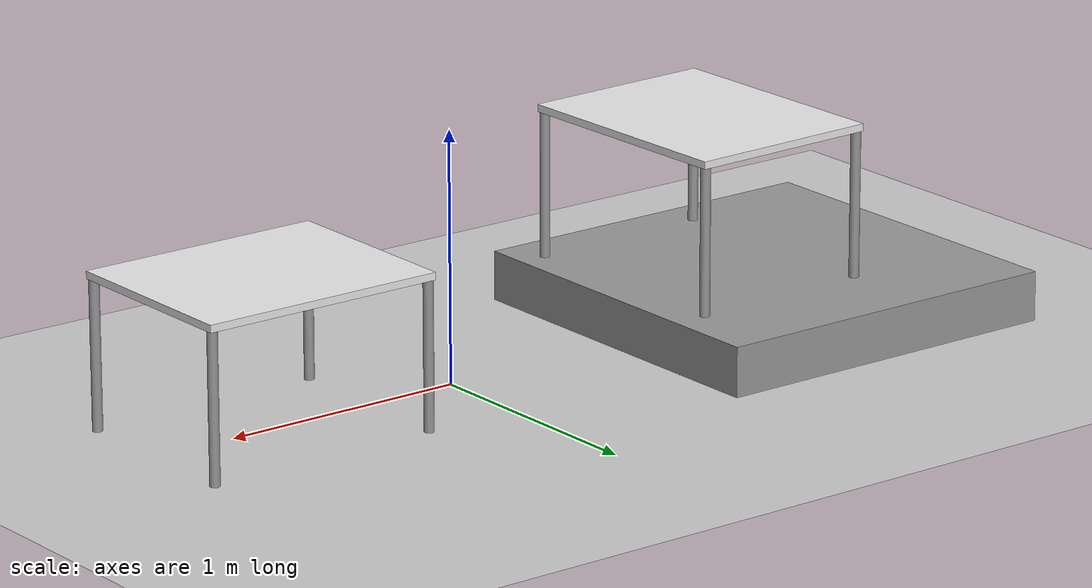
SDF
<sdf version="1.6">
 <world name="default">
  <physics name="default_physics" default="0" type="ode">
   <ode>
    <solver>
     <type>quick</type>
     <iters>20</iters>
     <sor>1</sor>
     <use_dynamic_moi_rescaling>0</use_dynamic_moi_rescaling>
    </solver>
    <constraints>
     <cfm>0</cfm>
     <erp>0.2</erp>
     <contact_max_correcting_vel>100</contact_max_correcting_vel>
     <contact_surface_layer>0</contact_surface_layer>
    </constraints>
   </ode>
   <real_time_update_rate>1000</real_time_update_rate>
   <max_step_size>0.001</max_step_size>
   <real_time_factor>1</real_time_factor>
  </physics>
  <light name="light1" type="directional">
   <pose>-2 0 4 0 -0 0</pose>
   <diffuse>1 1 1 1</diffuse>
   <specular>0.1 0.1 0.1 1</specular>
   <attenuation>
    <range>20</range>
    <constant>0.9</constant>
    <linear>0.01</linear>
    <quadratic>0.001</quadratic>
   </attenuation>
   <direction>0.2 0 -1</direction>
  </light>
  <model name="ground_plane">
   <static>1</static>
   <link name="link">
    <collision name="collision">
     <geometry><plane><normal>0 0 1</normal><size>100 100</size></plane></geometry>
     <surface>
      <contact><collide_bitmask>65535</collide_bitmask></contact>
      <friction><ode><mu>100</mu><mu2>50</mu2></ode></friction>
     </surface>
    </collision>
    <visual name="visual">
     <cast_shadows>0</cast_shadows>
     <geometry><plane><normal>0 0 1</normal><size>100 100</size></plane></geometry>
     <material>
      <script><uri>file://media/materials/scripts/gazebo.material</uri><name>Gazebo/Grey</name></script>
     </material>
    </visual>
   </link>
  </model>
  <gravity>0 0 -9.81</gravity>
  <magnetic_field>6e-06 2.3e-05 -4.2e-05</magnetic_field>
  <atmosphere type="adiabatic"/>
  <scene><ambient>0.4 0.4 0.4 1</ambient><background>0.7 0.7 0.7 1</background><shadows>1</shadows></scene>
  <audio><device>default</device></audio>
  <spherical_coordinates>
   <surface_model>EARTH_WGS84</surface_model>
   <latitude_deg>0</latitude_deg>
   <longitude_deg>0</longitude_deg>
   <elevation>0</elevation>
   <heading_deg>0</heading_deg>
  </spherical_coordinates>
  <model name="table1shortwhite">
   <link name="link">
    <velocity_decay><linear>0</linear><angular>0</angular></velocity_decay>
    <inertial>
     <mass>1</mass>
     <inertia><ixx>1</ixx><ixy>0</ixy><ixz>0</ixz><iyy>1</iyy><iyz>0</iyz><izz>1</izz></inertia>
    </inertial>
    <visual name="front_right_leg">
     <pose>0.48 -0.38 0.2 0 -0 0</pose>
     <geometry><cylinder><radius>0.02</radius><length>0.8</length></cylinder></geometry>
     <material>
      <script><uri>file://media/materials/scripts/gazebo.material</uri><name>Gazebo/Grey</name></script>
      <shader type="vertex"><normal_map>__default__</normal_map></shader>
      <ambient>0.3 0.3 0.3 1</ambient>
      <diffuse>0.7 0.7 0.7 1</diffuse>
      <specular>0.01 0.01 0.01 1</specular>
      <emissive>0 0 0 1</emissive>
     </material>
    </visual>
    <visual name="back_right_leg">
     <pose>-0.48 -0.38 0.2 0 -0 0</pose>
     <geometry><cylinder><radius>0.02</radius><length>0.8</length></cylinder></geometry>
     <material>
      <script><uri>file://media/materials/scripts/gazebo.material</uri><name>Gazebo/Grey</name></script>
      <shader type="vertex"><normal_map>__default__</normal_map></shader>
      <ambient>0.3 0.3 0.3 1</ambient>
      <diffuse>0.7 0.7 0.7 1</diffuse>
      <specular>0.01 0.01 0.01 1</specular>
      <emissive>0 0 0 1</emissive>
     </material>
    </visual>
    <visual name="back_left_leg">
     <pose>-0.48 0.38 0.2 0 -0 0</pose>
     <geometry><cylinder><radius>0.02</radius><length>0.8</length></cylinder></geometry>
     <material>
      <script><uri>file://media/materials/scripts/gazebo.material</uri><name>Gazebo/Grey</name></script>
      <shader type="vertex"><normal_map>__default__</normal_map></shader>
      <ambient>0.3 0.3 0.3 1</ambient>
      <diffuse>0.7 0.7 0.7 1</diffuse>
      <specular>0.01 0.01 0.01 1</specular>
      <emissive>0 0 0 1</emissive>
     </material>
    </visual>
    <visual name="visual1">
     <pose>0 0 0.6 0 -0 0</pose>
     <geometry><box><size>1 0.8 0.03</size></box></geometry>
     <material>
      <script><uri>file://media/materials/scripts/gazebo.material</uri><name>Gazebo/White</name></script>
      <shader type="vertex"><normal_map>__default__</normal_map></shader>
      <ambient>1 1 1 1</ambient>
      <diffuse>1 1 1 1</diffuse>
      <specular>0.2 0.2 0.2 1</specular>
      <emissive>0 0 0 1</emissive>
     </material>
    </visual>
    <visual name="front_left_leg">
     <pose>0.48 0.38 0.2 0 -0 0</pose>
     <geometry><cylinder><radius>0.02</radius><length>0.8</length></cylinder></geometry>
     <material>
      <script><uri>file://media/materials/scripts/gazebo.material</uri><name>Gazebo/Grey</name></script>
      <shader type="vertex"><normal_map>__default__</normal_map></shader>
      <ambient>0.3 0.3 0.3 1</ambient>
      <diffuse>0.7 0.7 0.7 1</diffuse>
      <specular>0.01 0.01 0.01 1</specular>
      <emissive>0 0 0 1</emissive>
     </material>
    </visual>
    <collision name="front_right_leg">
     <pose>0.48 -0.38 0.2 0 -0 0</pose>
     <geometry><cylinder><radius>0.02</radius><length>0.8</length></cylinder></geometry>
     <surface>
      <friction>
       <ode><mu>1</mu><mu2>1</mu2><fdir1>0 0 0</fdir1><slip1>0</slip1><slip2>0</slip2></ode>
       <torsional>
        <coefficient>1</coefficient>
        <patch_radius>0</patch_radius>
        <surface_radius>0</surface_radius>
        <use_patch_radius>1</use_patch_radius>
        <ode><slip>0</slip></ode>
       </torsional>
      </friction>
      <bounce><restitution_coefficient>0</restitution_coefficient><threshold>1e+06</threshold></bounce>
      <contact>
       <collide_without_contact>0</collide_without_contact>
       <collide_without_contact_bitmask>1</collide_without_contact_bitmask>
       <collide_bitmask>1</collide_bitmask>
       <ode>
        <soft_cfm>0</soft_cfm>
        <soft_erp>0.2</soft_erp>
        <kp>1e+13</kp>
        <kd>1</kd>
        <max_vel>0.01</max_vel>
        <min_depth>0</min_depth>
       </ode>
       <bullet>
        <split_impulse>1</split_impulse>
        <split_impulse_penetration_threshold>-0.01</split_impulse_penetration_threshold>
        <soft_cfm>0</soft_cfm>
        <soft_erp>0.2</soft_erp>
        <kp>1e+13</kp>
        <kd>1</kd>
       </bullet>
      </contact>
     </surface>
    </collision>
    <collision name="surface">
     <pose>0 0 0.6 0 -0 0</pose>
     <geometry><box><size>1 0.8 0.03</size></box></geometry>
     <surface>
      <friction>
       <ode><mu>1</mu><mu2>1</mu2><fdir1>0 0 0</fdir1><slip1>0</slip1><slip2>0</slip2></ode>
       <torsional>
        <coefficient>1</coefficient>
        <patch_radius>0</patch_radius>
        <surface_radius>0</surface_radius>
        <use_patch_radius>1</use_patch_radius>
        <ode><slip>0</slip></ode>
       </torsional>
      </friction>
      <bounce><restitution_coefficient>0</restitution_coefficient><threshold>1e+06</threshold></bounce>
      <contact>
       <collide_without_contact>0</collide_without_contact>
       <collide_without_contact_bitmask>1</collide_without_contact_bitmask>
       <collide_bitmask>1</collide_bitmask>
       <ode>
        <soft_cfm>0</soft_cfm>
        <soft_erp>0.2</soft_erp>
        <kp>1e+13</kp>
        <kd>1</kd>
        <max_vel>0.01</max_vel>
        <min_depth>0</min_depth>
       </ode>
       <bullet>
        <split_impulse>1</split_impulse>
        <split_impulse_penetration_threshold>-0.01</split_impulse_penetration_threshold>
        <soft_cfm>0</soft_cfm>
        <soft_erp>0.2</soft_erp>
        <kp>1e+13</kp>
        <kd>1</kd>
       </bullet>
      </contact>
     </surface>
    </collision>
    <collision name="front_left_leg">
     <pose>0.48 0.38 0.2 0 -0 0</pose>
     <geometry><cylinder><radius>0.02</radius><length>0.8</length></cylinder></geometry>
     <surface>
      <friction>
       <ode><mu>1</mu><mu2>1</mu2><fdir1>0 0 0</fdir1><slip1>0</slip1><slip2>0</slip2></ode>
       <torsional>
        <coefficient>1</coefficient>
        <patch_radius>0</patch_radius>
        <surface_radius>0</surface_radius>
        <use_patch_radius>1</use_patch_radius>
        <ode><slip>0</slip></ode>
       </torsional>
      </friction>
      <bounce><restitution_coefficient>0</restitution_coefficient><threshold>1e+06</threshold></bounce>
      <contact>
       <collide_without_contact>0</collide_without_contact>
       <collide_without_contact_bitmask>1</collide_without_contact_bitmask>
       <collide_bitmask>1</collide_bitmask>
       <ode>
        <soft_cfm>0</soft_cfm>
        <soft_erp>0.2</soft_erp>
        <kp>1e+13</kp>
        <kd>1</kd>
        <max_vel>0.01</max_vel>
        <min_depth>0</min_depth>
       </ode>
       <bullet>
        <split_impulse>1</split_impulse>
        <split_impulse_penetration_threshold>-0.01</split_impulse_penetration_threshold>
        <soft_cfm>0</soft_cfm>
        <soft_erp>0.2</soft_erp>
        <kp>1e+13</kp>
        <kd>1</kd>
       </bullet>
      </contact>
     </surface>
    </collision>
    <collision name="back_right_leg">
     <pose>-0.48 -0.38 0.2 0 -0 0</pose>
     <geometry><cylinder><radius>0.02</radius><length>0.8</length></cylinder></geometry>
     <surface>
      <friction>
       <ode><mu>1</mu><mu2>1</mu2><fdir1>0 0 0</fdir1><slip1>0</slip1><slip2>0</slip2></ode>
       <torsional>
        <coefficient>1</coefficient>
        <patch_radius>0</patch_radius>
        <surface_radius>0</surface_radius>
        <use_patch_radius>1</use_patch_radius>
        <ode><slip>0</slip></ode>
       </torsional>
      </friction>
      <bounce><restitution_coefficient>0</restitution_coefficient><threshold>1e+06</threshold></bounce>
      <contact>
       <collide_without_contact>0</collide_without_contact>
       <collide_without_contact_bitmask>1</collide_without_contact_bitmask>
       <collide_bitmask>1</collide_bitmask>
       <ode>
        <soft_cfm>0</soft_cfm>
        <soft_erp>0.2</soft_erp>
        <kp>1e+13</kp>
        <kd>1</kd>
        <max_vel>0.01</max_vel>
        <min_depth>0</min_depth>
       </ode>
       <bullet>
        <split_impulse>1</split_impulse>
        <split_impulse_penetration_threshold>-0.01</split_impulse_penetration_threshold>
        <soft_cfm>0</soft_cfm>
        <soft_erp>0.2</soft_erp>
        <kp>1e+13</kp>
        <kd>1</kd>
       </bullet>
      </contact>
     </surface>
    </collision>
    <collision name="back_left_leg">
     <pose>-0.48 0.38 0.2 0 -0 0</pose>
     <geometry><cylinder><radius>0.02</radius><length>0.8</length></cylinder></geometry>
     <surface>
      <friction>
       <ode><mu>1</mu><mu2>1</mu2><fdir1>0 0 0</fdir1><slip1>0</slip1><slip2>0</slip2></ode>
       <torsional>
        <coefficient>1</coefficient>
        <patch_radius>0</patch_radius>
        <surface_radius>0</surface_radius>
        <use_patch_radius>1</use_patch_radius>
        <ode><slip>0</slip></ode>
       </torsional>
      </friction>
      <bounce><restitution_coefficient>0</restitution_coefficient><threshold>1e+06</threshold></bounce>
      <contact>
       <collide_without_contact>0</collide_without_contact>
       <collide_without_contact_bitmask>1</collide_without_contact_bitmask>
       <collide_bitmask>1</collide_bitmask>
       <ode>
        <soft_cfm>0</soft_cfm>
        <soft_erp>0.2</soft_erp>
        <kp>1e+13</kp>
        <kd>1</kd>
        <max_vel>0.01</max_vel>
        <min_depth>0</min_depth>
       </ode>
       <bullet>
        <split_impulse>1</split_impulse>
        <split_impulse_penetration_threshold>-0.01</split_impulse_penetration_threshold>
        <soft_cfm>0</soft_cfm>
        <soft_erp>0.2</soft_erp>
        <kp>1e+13</kp>
        <kd>1</kd>
       </bullet>
      </contact>
     </surface>
    </collision>
   </link>
   <static>1</static>
   <pose>0.855818 -0.01362 0 0 -0 0</pose>
  </model>
  <model name="table1shortwhite_clone">
   <link name="link">
    <velocity_decay><linear>0</linear><angular>0</angular></velocity_decay>
    <inertial>
     <mass>1</mass>
     <inertia><ixx>1</ixx><ixy>0</ixy><ixz>0</ixz><iyy>1</iyy><iyz>0</iyz><izz>1</izz></inertia>
    </inertial>
    <visual name="front_right_leg">
     <pose>0.48 -0.38 0.2 0 -0 0</pose>
     <geometry><cylinder><radius>0.02</radius><length>0.8</length></cylinder></geometry>
     <material>
      <script><uri>file://media/materials/scripts/gazebo.material</uri><name>Gazebo/Grey</name></script>
      <shader type="vertex"><normal_map>__default__</normal_map></shader>
      <ambient>0.3 0.3 0.3 1</ambient>
      <diffuse>0.7 0.7 0.7 1</diffuse>
      <specular>0.01 0.01 0.01 1</specular>
      <emissive>0 0 0 1</emissive>
     </material>
    </visual>
    <visual name="back_right_leg">
     <pose>-0.48 -0.38 0.2 0 -0 0</pose>
     <geometry><cylinder><radius>0.02</radius><length>0.8</length></cylinder></geometry>
     <material>
      <script><uri>file://media/materials/scripts/gazebo.material</uri><name>Gazebo/Grey</name></script>
      <shader type="vertex"><normal_map>__default__</normal_map></shader>
      <ambient>0.3 0.3 0.3 1</ambient>
      <diffuse>0.7 0.7 0.7 1</diffuse>
      <specular>0.01 0.01 0.01 1</specular>
      <emissive>0 0 0 1</emissive>
     </material>
    </visual>
    <visual name="back_left_leg">
     <pose>-0.48 0.38 0.2 0 -0 0</pose>
     <geometry><cylinder><radius>0.02</radius><length>0.8</length></cylinder></geometry>
     <material>
      <script><uri>file://media/materials/scripts/gazebo.material</uri><name>Gazebo/Grey</name></script>
      <shader type="vertex"><normal_map>__default__</normal_map></shader>
      <ambient>0.3 0.3 0.3 1</ambient>
      <diffuse>0.7 0.7 0.7 1</diffuse>
      <specular>0.01 0.01 0.01 1</specular>
      <emissive>0 0 0 1</emissive>
     </material>
    </visual>
    <visual name="visual1">
     <pose>0 0 0.6 0 -0 0</pose>
     <geometry><box><size>1 0.8 0.03</size></box></geometry>
     <material>
      <script><uri>file://media/materials/scripts/gazebo.material</uri><name>Gazebo/White</name></script>
      <shader type="vertex"><normal_map>__default__</normal_map></shader>
      <ambient>1 1 1 1</ambient>
      <diffuse>1 1 1 1</diffuse>
      <specular>0.2 0.2 0.2 1</specular>
      <emissive>0 0 0 1</emissive>
     </material>
    </visual>
    <visual name="front_left_leg">
     <pose>0.48 0.38 0.2 0 -0 0</pose>
     <geometry><cylinder><radius>0.02</radius><length>0.8</length></cylinder></geometry>
     <material>
      <script><uri>file://media/materials/scripts/gazebo.material</uri><name>Gazebo/Grey</name></script>
      <shader type="vertex"><normal_map>__default__</normal_map></shader>
      <ambient>0.3 0.3 0.3 1</ambient>
      <diffuse>0.7 0.7 0.7 1</diffuse>
      <specular>0.01 0.01 0.01 1</specular>
      <emissive>0 0 0 1</emissive>
     </material>
    </visual>
    <collision name="front_right_leg">
     <pose>0.48 -0.38 0.2 0 -0 0</pose>
     <geometry><cylinder><radius>0.02</radius><length>0.8</length></cylinder></geometry>
     <surface>
      <friction>
       <ode><mu>1</mu><mu2>1</mu2><fdir1>0 0 0</fdir1><slip1>0</slip1><slip2>0</slip2></ode>
       <torsional>
        <coefficient>1</coefficient>
        <patch_radius>0</patch_radius>
        <surface_radius>0</surface_radius>
        <use_patch_radius>1</use_patch_radius>
        <ode><slip>0</slip></ode>
       </torsional>
      </friction>
      <bounce><restitution_coefficient>0</restitution_coefficient><threshold>1e+06</threshold></bounce>
      <contact>
       <collide_without_contact>0</collide_without_contact>
       <collide_without_contact_bitmask>1</collide_without_contact_bitmask>
       <collide_bitmask>1</collide_bitmask>
       <ode>
        <soft_cfm>0</soft_cfm>
        <soft_erp>0.2</soft_erp>
        <kp>1e+13</kp>
        <kd>1</kd>
        <max_vel>0.01</max_vel>
        <min_depth>0</min_depth>
       </ode>
       <bullet>
        <split_impulse>1</split_impulse>
        <split_impulse_penetration_threshold>-0.01</split_impulse_penetration_threshold>
        <soft_cfm>0</soft_cfm>
        <soft_erp>0.2</soft_erp>
        <kp>1e+13</kp>
        <kd>1</kd>
       </bullet>
      </contact>
     </surface>
    </collision>
    <collision name="surface">
     <pose>0 0 0.6 0 -0 0</pose>
     <geometry><box><size>1 0.8 0.03</size></box></geometry>
     <surface>
      <friction>
       <ode><mu>1</mu><mu2>1</mu2><fdir1>0 0 0</fdir1><slip1>0</slip1><slip2>0</slip2></ode>
       <torsional>
        <coefficient>1</coefficient>
        <patch_radius>0</patch_radius>
        <surface_radius>0</surface_radius>
        <use_patch_radius>1</use_patch_radius>
        <ode><slip>0</slip></ode>
       </torsional>
      </friction>
      <bounce><restitution_coefficient>0</restitution_coefficient><threshold>1e+06</threshold></bounce>
      <contact>
       <collide_without_contact>0</collide_without_contact>
       <collide_without_contact_bitmask>1</collide_without_contact_bitmask>
       <collide_bitmask>1</collide_bitmask>
       <ode>
        <soft_cfm>0</soft_cfm>
        <soft_erp>0.2</soft_erp>
        <kp>1e+13</kp>
        <kd>1</kd>
        <max_vel>0.01</max_vel>
        <min_depth>0</min_depth>
       </ode>
       <bullet>
        <split_impulse>1</split_impulse>
        <split_impulse_penetration_threshold>-0.01</split_impulse_penetration_threshold>
        <soft_cfm>0</soft_cfm>
        <soft_erp>0.2</soft_erp>
        <kp>1e+13</kp>
        <kd>1</kd>
       </bullet>
      </contact>
     </surface>
    </collision>
    <collision name="front_left_leg">
     <pose>0.48 0.38 0.2 0 -0 0</pose>
     <geometry><cylinder><radius>0.02</radius><length>0.8</length></cylinder></geometry>
     <surface>
      <friction>
       <ode><mu>1</mu><mu2>1</mu2><fdir1>0 0 0</fdir1><slip1>0</slip1><slip2>0</slip2></ode>
       <torsional>
        <coefficient>1</coefficient>
        <patch_radius>0</patch_radius>
        <surface_radius>0</surface_radius>
        <use_patch_radius>1</use_patch_radius>
        <ode><slip>0</slip></ode>
       </torsional>
      </friction>
      <bounce><restitution_coefficient>0</restitution_coefficient><threshold>1e+06</threshold></bounce>
      <contact>
       <collide_without_contact>0</collide_without_contact>
       <collide_without_contact_bitmask>1</collide_without_contact_bitmask>
       <collide_bitmask>1</collide_bitmask>
       <ode>
        <soft_cfm>0</soft_cfm>
        <soft_erp>0.2</soft_erp>
        <kp>1e+13</kp>
        <kd>1</kd>
        <max_vel>0.01</max_vel>
        <min_depth>0</min_depth>
       </ode>
       <bullet>
        <split_impulse>1</split_impulse>
        <split_impulse_penetration_threshold>-0.01</split_impulse_penetration_threshold>
        <soft_cfm>0</soft_cfm>
        <soft_erp>0.2</soft_erp>
        <kp>1e+13</kp>
        <kd>1</kd>
       </bullet>
      </contact>
     </surface>
    </collision>
    <collision name="back_right_leg">
     <pose>-0.48 -0.38 0.2 0 -0 0</pose>
     <geometry><cylinder><radius>0.02</radius><length>0.8</length></cylinder></geometry>
     <surface>
      <friction>
       <ode><mu>1</mu><mu2>1</mu2><fdir1>0 0 0</fdir1><slip1>0</slip1><slip2>0</slip2></ode>
       <torsional>
        <coefficient>1</coefficient>
        <patch_radius>0</patch_radius>
        <surface_radius>0</surface_radius>
        <use_patch_radius>1</use_patch_radius>
        <ode><slip>0</slip></ode>
       </torsional>
      </friction>
      <bounce><restitution_coefficient>0</restitution_coefficient><threshold>1e+06</threshold></bounce>
      <contact>
       <collide_without_contact>0</collide_without_contact>
       <collide_without_contact_bitmask>1</collide_without_contact_bitmask>
       <collide_bitmask>1</collide_bitmask>
       <ode>
        <soft_cfm>0</soft_cfm>
        <soft_erp>0.2</soft_erp>
        <kp>1e+13</kp>
        <kd>1</kd>
        <max_vel>0.01</max_vel>
        <min_depth>0</min_depth>
       </ode>
       <bullet>
        <split_impulse>1</split_impulse>
        <split_impulse_penetration_threshold>-0.01</split_impulse_penetration_threshold>
        <soft_cfm>0</soft_cfm>
        <soft_erp>0.2</soft_erp>
        <kp>1e+13</kp>
        <kd>1</kd>
       </bullet>
      </contact>
     </surface>
    </collision>
    <collision name="back_left_leg">
     <pose>-0.48 0.38 0.2 0 -0 0</pose>
     <geometry><cylinder><radius>0.02</radius><length>0.8</length></cylinder></geometry>
     <surface>
      <friction>
       <ode><mu>1</mu><mu2>1</mu2><fdir1>0 0 0</fdir1><slip1>0</slip1><slip2>0</slip2></ode>
       <torsional>
        <coefficient>1</coefficient>
        <patch_radius>0</patch_radius>
        <surface_radius>0</surface_radius>
        <use_patch_radius>1</use_patch_radius>
        <ode><slip>0</slip></ode>
       </torsional>
      </friction>
      <bounce><restitution_coefficient>0</restitution_coefficient><threshold>1e+06</threshold></bounce>
      <contact>
       <collide_without_contact>0</collide_without_contact>
       <collide_without_contact_bitmask>1</collide_without_contact_bitmask>
       <collide_bitmask>1</collide_bitmask>
       <ode>
        <soft_cfm>0</soft_cfm>
        <soft_erp>0.2</soft_erp>
        <kp>1e+13</kp>
        <kd>1</kd>
        <max_vel>0.01</max_vel>
        <min_depth>0</min_depth>
       </ode>
       <bullet>
        <split_impulse>1</split_impulse>
        <split_impulse_penetration_threshold>-0.01</split_impulse_penetration_threshold>
        <soft_cfm>0</soft_cfm>
        <soft_erp>0.2</soft_erp>
        <kp>1e+13</kp>
        <kd>1</kd>
       </bullet>
      </contact>
     </surface>
    </collision>
   </link>
   <static>1</static>
   <pose>-1.25591 -0.06818 0.206178 0 0 -1.54564</pose>
  </model>
  <model name="table_block">
   <link name="link">
    <inertial>
     <mass>1</mass>
     <inertia>
      <ixx>0.166667</ixx>
      <ixy>0</ixy>
      <ixz>0</ixz>
      <iyy>0.166667</iyy>
      <iyz>0</iyz>
      <izz>0.166667</izz>
     </inertia>
    </inertial>
    <visual name="visual">
     <geometry><box><size>1.5 1.5 0.2</size></box></geometry>
     <material>
      <script><name>Gazebo/Grey</name><uri>file://media/materials/scripts/gazebo.material</uri></script>
      <shader type="vertex"><normal_map>__default__</normal_map></shader>
      <ambient>0.3 0.3 0.3 1</ambient>
      <diffuse>0.7 0.7 0.7 1</diffuse>
      <specular>0.01 0.01 0.01 1</specular>
      <emissive>0 0 0 1</emissive>
     </material>
    </visual>
    <collision name="collision">
     <geometry><box><size>1.5 1.5 0.2</size></box></geometry>
     <surface>
      <friction>
       <ode><mu>1</mu><mu2>1</mu2><fdir1>0 0 0</fdir1><slip1>0</slip1><slip2>0</slip2></ode>
       <torsional>
        <coefficient>1</coefficient>
        <patch_radius>0</patch_radius>
        <surface_radius>0</surface_radius>
        <use_patch_radius>1</use_patch_radius>
        <ode><slip>0</slip></ode>
       </torsional>
      </friction>
      <bounce><restitution_coefficient>0</restitution_coefficient><threshold>1e+06</threshold></bounce>
      <contact>
       <collide_without_contact>0</collide_without_contact>
       <collide_without_contact_bitmask>1</collide_without_contact_bitmask>
       <collide_bitmask>1</collide_bitmask>
       <ode>
        <soft_cfm>0</soft_cfm>
        <soft_erp>0.2</soft_erp>
        <kp>1e+13</kp>
        <kd>1</kd>
        <max_vel>0.01</max_vel>
        <min_depth>0</min_depth>
       </ode>
       <bullet>
        <split_impulse>1</split_impulse>
        <split_impulse_penetration_threshold>-0.01</split_impulse_penetration_threshold>
        <soft_cfm>0</soft_cfm>
        <soft_erp>0.2</soft_erp>
        <kp>1e+13</kp>
        <kd>1</kd>
       </bullet>
      </contact>
     </surface>
    </collision>
   </link>
   <static>0</static>
   <pose>-1.4983 0.036606 0.102131 -8e-06 -0 -1e-06</pose>
  </model>
 </world>
</sdf>
